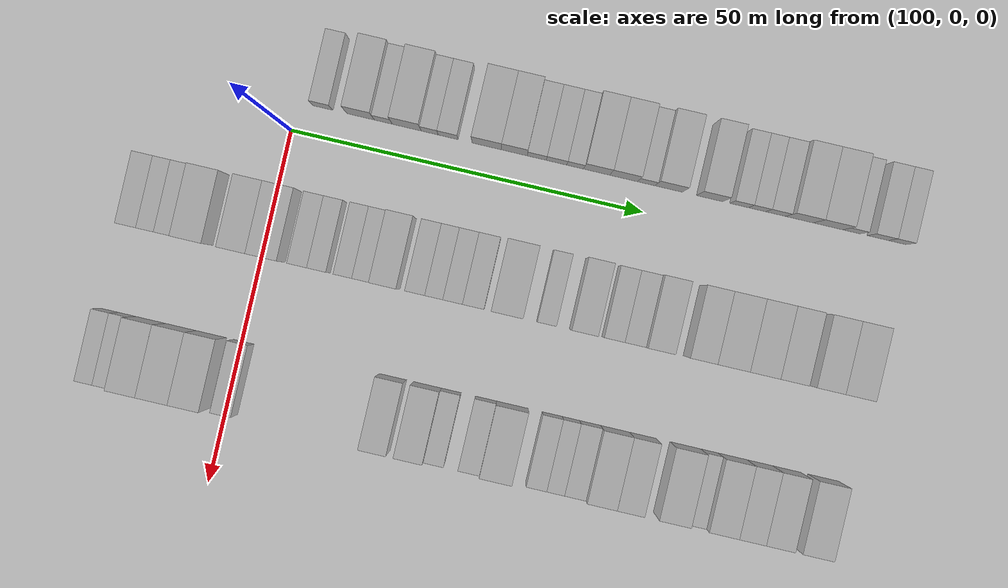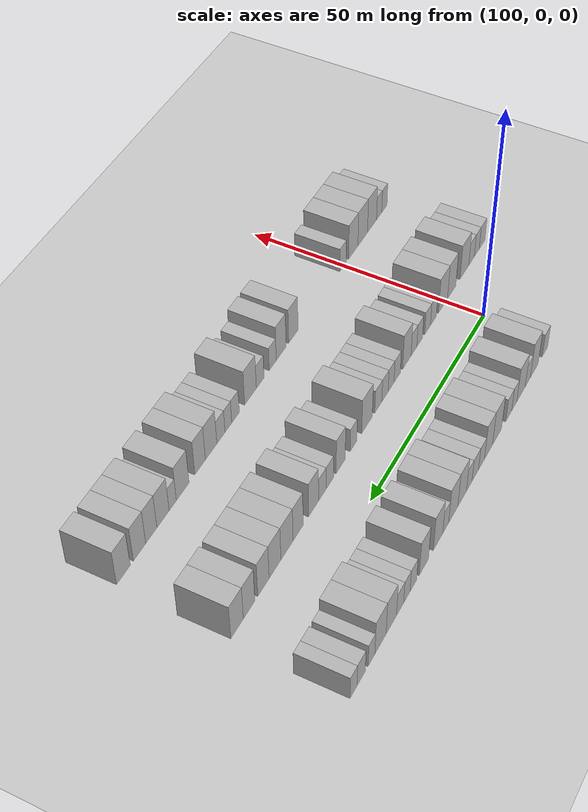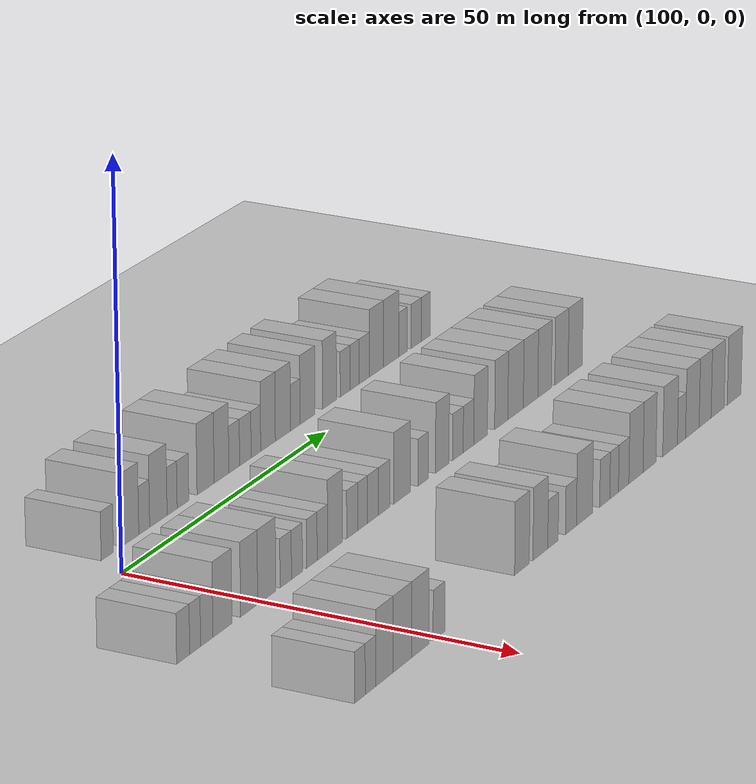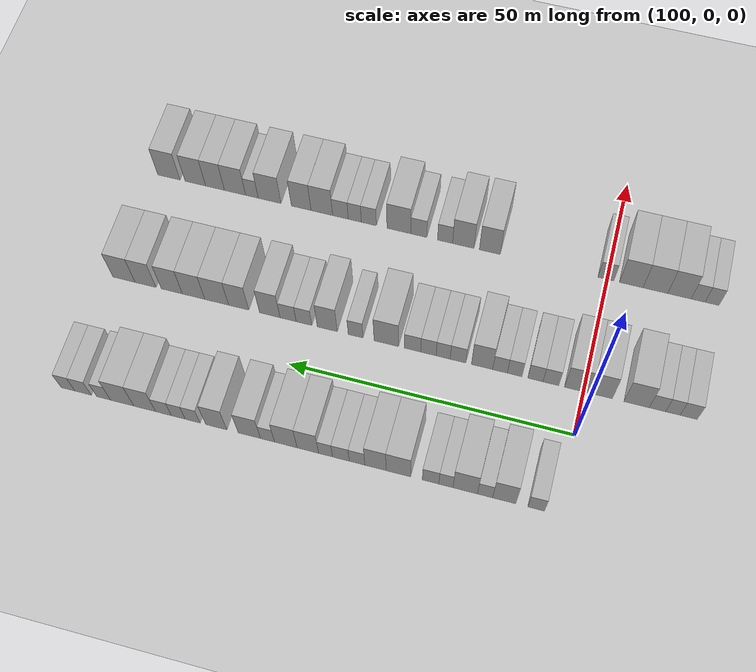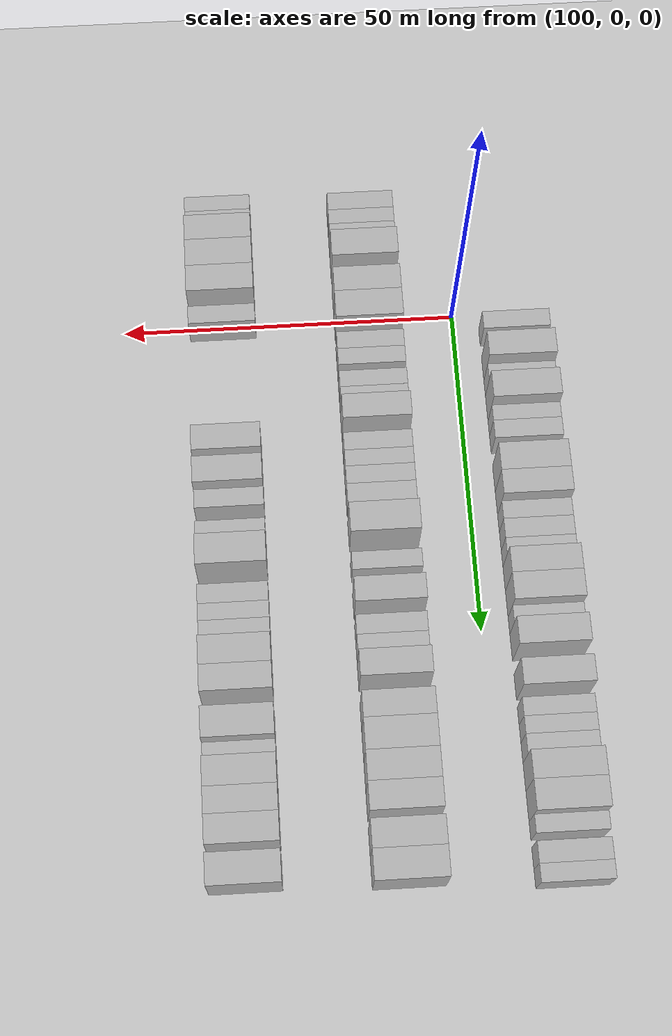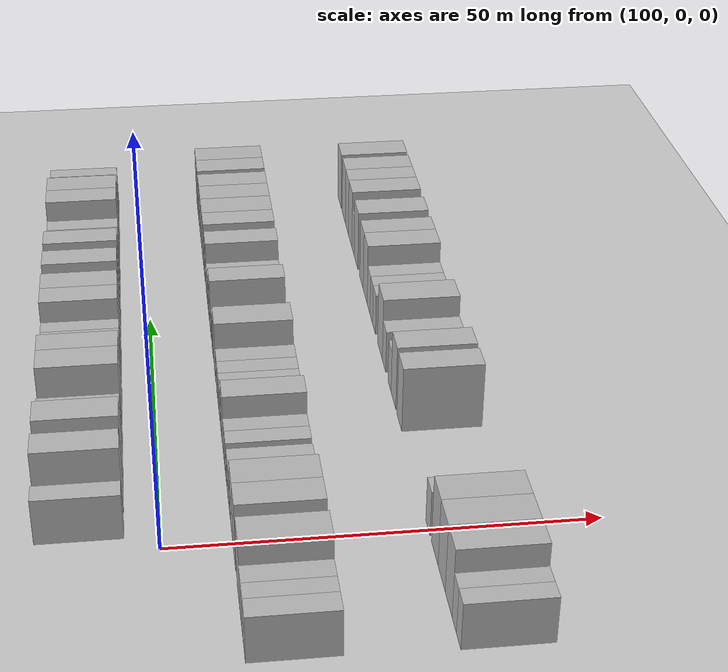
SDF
<sdf version="1.6">
 <world name="default">
  <include>
   <name>ground_plane_2</name>
   <uri>model://HANNAS_ground_plane</uri>
   <pose>100 0 0  0 0 0</pose>
  </include>
  <model name="building_623">
   <static>1</static>
   <pose>91.0000 3.6426 0 0.000000 0.000000 0.000000</pose>
   <link name="link">
    <pose>0 0 3.00 0 0 0</pose>
    <collision name="collision"><geometry><box><size>10.0000 2.7874 6.0000</size></box></geometry></collision>
    <visual name="visual">
     <cast_shadows>0</cast_shadows>
     <geometry><box><size>10.0000 2.7874 6.0000</size></box></geometry>
     <material>
      <script>
       <uri>model://HANNAS_wall/materials/scripts</uri>
       <uri>model://HANNAS_wall/materials/textures</uri>
       <name>vrc/HANNAS_wall</name>
      </script>
     </material>
    </visual>
   </link>
  </model>
  <model name="building_624">
   <static>1</static>
   <pose>91.0000 8.9837 0 0.000000 0.000000 0.000000</pose>
   <link name="link">
    <pose>0 0 4.50 0 0 0</pose>
    <collision name="collision"><geometry><box><size>10.0000 3.8947 9.0000</size></box></geometry></collision>
    <visual name="visual">
     <cast_shadows>0</cast_shadows>
     <geometry><box><size>10.0000 3.8947 9.0000</size></box></geometry>
     <material>
      <script>
       <uri>model://HANNAS_wall/materials/scripts</uri>
       <uri>model://HANNAS_wall/materials/textures</uri>
       <name>vrc/HANNAS_wall</name>
      </script>
     </material>
    </visual>
   </link>
  </model>
  <model name="building_625">
   <static>1</static>
   <pose>91.0000 12.2042 0 0.000000 0.000000 0.000000</pose>
   <link name="link">
    <pose>0 0 3.00 0 0 0</pose>
    <collision name="collision"><geometry><box><size>10.0000 2.5463 6.0000</size></box></geometry></collision>
    <visual name="visual">
     <cast_shadows>0</cast_shadows>
     <geometry><box><size>10.0000 2.5463 6.0000</size></box></geometry>
     <material>
      <script>
       <uri>model://HANNAS_wall/materials/scripts</uri>
       <uri>model://HANNAS_wall/materials/textures</uri>
       <name>vrc/HANNAS_wall</name>
      </script>
     </material>
    </visual>
   </link>
  </model>
  <model name="building_626">
   <static>1</static>
   <pose>91.0000 15.5388 0 0.000000 0.000000 0.000000</pose>
   <link name="link">
    <pose>0 0 4.50 0 0 0</pose>
    <collision name="collision"><geometry><box><size>10.0000 4.1229 9.0000</size></box></geometry></collision>
    <visual name="visual">
     <cast_shadows>0</cast_shadows>
     <geometry><box><size>10.0000 4.1229 9.0000</size></box></geometry>
     <material>
      <script>
       <uri>model://HANNAS_wall/materials/scripts</uri>
       <uri>model://HANNAS_wall/materials/textures</uri>
       <name>vrc/HANNAS_wall</name>
      </script>
     </material>
    </visual>
   </link>
  </model>
  <model name="building_627">
   <static>1</static>
   <pose>91.0000 18.8030 0 0.000000 0.000000 0.000000</pose>
   <link name="link">
    <pose>0 0 3.00 0 0 0</pose>
    <collision name="collision"><geometry><box><size>10.0000 2.4054 6.0000</size></box></geometry></collision>
    <visual name="visual">
     <cast_shadows>0</cast_shadows>
     <geometry><box><size>10.0000 2.4054 6.0000</size></box></geometry>
     <material>
      <script>
       <uri>model://HANNAS_wall/materials/scripts</uri>
       <uri>model://HANNAS_wall/materials/textures</uri>
       <name>vrc/HANNAS_wall</name>
      </script>
     </material>
    </visual>
   </link>
  </model>
  <model name="building_628">
   <static>1</static>
   <pose>91.0000 21.4073 0 0.000000 0.000000 0.000000</pose>
   <link name="link">
    <pose>0 0 3.00 0 0 0</pose>
    <collision name="collision"><geometry><box><size>10.0000 2.8033 6.0000</size></box></geometry></collision>
    <visual name="visual">
     <cast_shadows>0</cast_shadows>
     <geometry><box><size>10.0000 2.8033 6.0000</size></box></geometry>
     <material>
      <script>
       <uri>model://HANNAS_wall/materials/scripts</uri>
       <uri>model://HANNAS_wall/materials/textures</uri>
       <name>vrc/HANNAS_wall</name>
      </script>
     </material>
    </visual>
   </link>
  </model>
  <model name="building_629">
   <static>1</static>
   <pose>91.0000 26.9005 0 0.000000 0.000000 0.000000</pose>
   <link name="link">
    <pose>0 0 4.50 0 0 0</pose>
    <collision name="collision"><geometry><box><size>10.0000 4.1831 9.0000</size></box></geometry></collision>
    <visual name="visual">
     <cast_shadows>0</cast_shadows>
     <geometry><box><size>10.0000 4.1831 9.0000</size></box></geometry>
     <material>
      <script>
       <uri>model://HANNAS_wall/materials/scripts</uri>
       <uri>model://HANNAS_wall/materials/textures</uri>
       <name>vrc/HANNAS_wall</name>
      </script>
     </material>
    </visual>
   </link>
  </model>
  <model name="building_630">
   <static>1</static>
   <pose>91.0000 30.8137 0 0.000000 0.000000 0.000000</pose>
   <link name="link">
    <pose>0 0 4.50 0 0 0</pose>
    <collision name="collision"><geometry><box><size>10.0000 3.6433 9.0000</size></box></geometry></collision>
    <visual name="visual">
     <cast_shadows>0</cast_shadows>
     <geometry><box><size>10.0000 3.6433 9.0000</size></box></geometry>
     <material>
      <script>
       <uri>model://HANNAS_wall/materials/scripts</uri>
       <uri>model://HANNAS_wall/materials/textures</uri>
       <name>vrc/HANNAS_wall</name>
      </script>
     </material>
    </visual>
   </link>
  </model>
  <model name="building_631">
   <static>1</static>
   <pose>91.0000 33.9777 0 0.000000 0.000000 0.000000</pose>
   <link name="link">
    <pose>0 0 3.00 0 0 0</pose>
    <collision name="collision"><geometry><box><size>10.0000 2.6846 6.0000</size></box></geometry></collision>
    <visual name="visual">
     <cast_shadows>0</cast_shadows>
     <geometry><box><size>10.0000 2.6846 6.0000</size></box></geometry>
     <material>
      <script>
       <uri>model://HANNAS_wall/materials/scripts</uri>
       <uri>model://HANNAS_wall/materials/textures</uri>
       <name>vrc/HANNAS_wall</name>
      </script>
     </material>
    </visual>
   </link>
  </model>
  <model name="building_632">
   <static>1</static>
   <pose>91.0000 36.7694 0 0.000000 0.000000 0.000000</pose>
   <link name="link">
    <pose>0 0 3.00 0 0 0</pose>
    <collision name="collision"><geometry><box><size>10.0000 2.8990 6.0000</size></box></geometry></collision>
    <visual name="visual">
     <cast_shadows>0</cast_shadows>
     <geometry><box><size>10.0000 2.8990 6.0000</size></box></geometry>
     <material>
      <script>
       <uri>model://HANNAS_wall/materials/scripts</uri>
       <uri>model://HANNAS_wall/materials/textures</uri>
       <name>vrc/HANNAS_wall</name>
      </script>
     </material>
    </visual>
   </link>
  </model>
  <model name="building_633">
   <static>1</static>
   <pose>91.0000 39.4252 0 0.000000 0.000000 0.000000</pose>
   <link name="link">
    <pose>0 0 3.00 0 0 0</pose>
    <collision name="collision"><geometry><box><size>10.0000 2.4126 6.0000</size></box></geometry></collision>
    <visual name="visual">
     <cast_shadows>0</cast_shadows>
     <geometry><box><size>10.0000 2.4126 6.0000</size></box></geometry>
     <material>
      <script>
       <uri>model://HANNAS_wall/materials/scripts</uri>
       <uri>model://HANNAS_wall/materials/textures</uri>
       <name>vrc/HANNAS_wall</name>
      </script>
     </material>
    </visual>
   </link>
  </model>
  <model name="building_634">
   <static>1</static>
   <pose>91.0000 42.4976 0 0.000000 0.000000 0.000000</pose>
   <link name="link">
    <pose>0 0 4.50 0 0 0</pose>
    <collision name="collision"><geometry><box><size>10.0000 3.7321 9.0000</size></box></geometry></collision>
    <visual name="visual">
     <cast_shadows>0</cast_shadows>
     <geometry><box><size>10.0000 3.7321 9.0000</size></box></geometry>
     <material>
      <script>
       <uri>model://HANNAS_wall/materials/scripts</uri>
       <uri>model://HANNAS_wall/materials/textures</uri>
       <name>vrc/HANNAS_wall</name>
      </script>
     </material>
    </visual>
   </link>
  </model>
  <model name="building_635">
   <static>1</static>
   <pose>91.0000 46.3310 0 0.000000 0.000000 0.000000</pose>
   <link name="link">
    <pose>0 0 4.50 0 0 0</pose>
    <collision name="collision"><geometry><box><size>10.0000 3.9347 9.0000</size></box></geometry></collision>
    <visual name="visual">
     <cast_shadows>0</cast_shadows>
     <geometry><box><size>10.0000 3.9347 9.0000</size></box></geometry>
     <material>
      <script>
       <uri>model://HANNAS_wall/materials/scripts</uri>
       <uri>model://HANNAS_wall/materials/textures</uri>
       <name>vrc/HANNAS_wall</name>
      </script>
     </material>
    </visual>
   </link>
  </model>
  <model name="building_636">
   <static>1</static>
   <pose>91.0000 49.5334 0 0.000000 0.000000 0.000000</pose>
   <link name="link">
    <pose>0 0 3.00 0 0 0</pose>
    <collision name="collision"><geometry><box><size>10.0000 2.4701 6.0000</size></box></geometry></collision>
    <visual name="visual">
     <cast_shadows>0</cast_shadows>
     <geometry><box><size>10.0000 2.4701 6.0000</size></box></geometry>
     <material>
      <script>
       <uri>model://HANNAS_wall/materials/scripts</uri>
       <uri>model://HANNAS_wall/materials/textures</uri>
       <name>vrc/HANNAS_wall</name>
      </script>
     </material>
    </visual>
   </link>
  </model>
  <model name="building_637">
   <static>1</static>
   <pose>91.0000 52.7285 0 0.000000 0.000000 0.000000</pose>
   <link name="link">
    <pose>0 0 4.50 0 0 0</pose>
    <collision name="collision"><geometry><box><size>10.0000 3.9201 9.0000</size></box></geometry></collision>
    <visual name="visual">
     <cast_shadows>0</cast_shadows>
     <geometry><box><size>10.0000 3.9201 9.0000</size></box></geometry>
     <material>
      <script>
       <uri>model://HANNAS_wall/materials/scripts</uri>
       <uri>model://HANNAS_wall/materials/textures</uri>
       <name>vrc/HANNAS_wall</name>
      </script>
     </material>
    </visual>
   </link>
  </model>
  <model name="building_638">
   <static>1</static>
   <pose>91.0000 58.5573 0 0.000000 0.000000 0.000000</pose>
   <link name="link">
    <pose>0 0 4.50 0 0 0</pose>
    <collision name="collision"><geometry><box><size>10.0000 3.7375 9.0000</size></box></geometry></collision>
    <visual name="visual">
     <cast_shadows>0</cast_shadows>
     <geometry><box><size>10.0000 3.7375 9.0000</size></box></geometry>
     <material>
      <script>
       <uri>model://HANNAS_wall/materials/scripts</uri>
       <uri>model://HANNAS_wall/materials/textures</uri>
       <name>vrc/HANNAS_wall</name>
      </script>
     </material>
    </visual>
   </link>
  </model>
  <model name="building_639">
   <static>1</static>
   <pose>91.0000 62.7350 0 0.000000 0.000000 0.000000</pose>
   <link name="link">
    <pose>0 0 3.00 0 0 0</pose>
    <collision name="collision"><geometry><box><size>10.0000 2.6179 6.0000</size></box></geometry></collision>
    <visual name="visual">
     <cast_shadows>0</cast_shadows>
     <geometry><box><size>10.0000 2.6179 6.0000</size></box></geometry>
     <material>
      <script>
       <uri>model://HANNAS_wall/materials/scripts</uri>
       <uri>model://HANNAS_wall/materials/textures</uri>
       <name>vrc/HANNAS_wall</name>
      </script>
     </material>
    </visual>
   </link>
  </model>
  <model name="building_640">
   <static>1</static>
   <pose>91.0000 65.2831 0 0.000000 0.000000 0.000000</pose>
   <link name="link">
    <pose>0 0 3.00 0 0 0</pose>
    <collision name="collision"><geometry><box><size>10.0000 2.4783 6.0000</size></box></geometry></collision>
    <visual name="visual">
     <cast_shadows>0</cast_shadows>
     <geometry><box><size>10.0000 2.4783 6.0000</size></box></geometry>
     <material>
      <script>
       <uri>model://HANNAS_wall/materials/scripts</uri>
       <uri>model://HANNAS_wall/materials/textures</uri>
       <name>vrc/HANNAS_wall</name>
      </script>
     </material>
    </visual>
   </link>
  </model>
  <model name="building_641">
   <static>1</static>
   <pose>91.0000 67.9328 0 0.000000 0.000000 0.000000</pose>
   <link name="link">
    <pose>0 0 3.00 0 0 0</pose>
    <collision name="collision"><geometry><box><size>10.0000 2.8212 6.0000</size></box></geometry></collision>
    <visual name="visual">
     <cast_shadows>0</cast_shadows>
     <geometry><box><size>10.0000 2.8212 6.0000</size></box></geometry>
     <material>
      <script>
       <uri>model://HANNAS_wall/materials/scripts</uri>
       <uri>model://HANNAS_wall/materials/textures</uri>
       <name>vrc/HANNAS_wall</name>
      </script>
     </material>
    </visual>
   </link>
  </model>
  <model name="building_642">
   <static>1</static>
   <pose>91.0000 71.3110 0 0.000000 0.000000 0.000000</pose>
   <link name="link">
    <pose>0 0 4.50 0 0 0</pose>
    <collision name="collision"><geometry><box><size>10.0000 3.9352 9.0000</size></box></geometry></collision>
    <visual name="visual">
     <cast_shadows>0</cast_shadows>
     <geometry><box><size>10.0000 3.9352 9.0000</size></box></geometry>
     <material>
      <script>
       <uri>model://HANNAS_wall/materials/scripts</uri>
       <uri>model://HANNAS_wall/materials/textures</uri>
       <name>vrc/HANNAS_wall</name>
      </script>
     </material>
    </visual>
   </link>
  </model>
  <model name="building_643">
   <static>1</static>
   <pose>91.0000 75.3728 0 0.000000 0.000000 0.000000</pose>
   <link name="link">
    <pose>0 0 4.50 0 0 0</pose>
    <collision name="collision"><geometry><box><size>10.0000 4.1884 9.0000</size></box></geometry></collision>
    <visual name="visual">
     <cast_shadows>0</cast_shadows>
     <geometry><box><size>10.0000 4.1884 9.0000</size></box></geometry>
     <material>
      <script>
       <uri>model://HANNAS_wall/materials/scripts</uri>
       <uri>model://HANNAS_wall/materials/textures</uri>
       <name>vrc/HANNAS_wall</name>
      </script>
     </material>
    </visual>
   </link>
  </model>
  <model name="building_644">
   <static>1</static>
   <pose>91.0000 78.7171 0 0.000000 0.000000 0.000000</pose>
   <link name="link">
    <pose>0 0 3.00 0 0 0</pose>
    <collision name="collision"><geometry><box><size>10.0000 2.5002 6.0000</size></box></geometry></collision>
    <visual name="visual">
     <cast_shadows>0</cast_shadows>
     <geometry><box><size>10.0000 2.5002 6.0000</size></box></geometry>
     <material>
      <script>
       <uri>model://HANNAS_wall/materials/scripts</uri>
       <uri>model://HANNAS_wall/materials/textures</uri>
       <name>vrc/HANNAS_wall</name>
      </script>
     </material>
    </visual>
   </link>
  </model>
  <model name="building_645">
   <static>1</static>
   <pose>91.0000 82.4505 0 0.000000 0.000000 0.000000</pose>
   <link name="link">
    <pose>0 0 3.00 0 0 0</pose>
    <collision name="collision"><geometry><box><size>10.0000 2.9667 6.0000</size></box></geometry></collision>
    <visual name="visual">
     <cast_shadows>0</cast_shadows>
     <geometry><box><size>10.0000 2.9667 6.0000</size></box></geometry>
     <material>
      <script>
       <uri>model://HANNAS_wall/materials/scripts</uri>
       <uri>model://HANNAS_wall/materials/textures</uri>
       <name>vrc/HANNAS_wall</name>
      </script>
     </material>
    </visual>
   </link>
  </model>
  <model name="building_646">
   <static>1</static>
   <pose>91.0000 85.1987 0 0.000000 0.000000 0.000000</pose>
   <link name="link">
    <pose>0 0 3.00 0 0 0</pose>
    <collision name="collision"><geometry><box><size>10.0000 2.5296 6.0000</size></box></geometry></collision>
    <visual name="visual">
     <cast_shadows>0</cast_shadows>
     <geometry><box><size>10.0000 2.5296 6.0000</size></box></geometry>
     <material>
      <script>
       <uri>model://HANNAS_wall/materials/scripts</uri>
       <uri>model://HANNAS_wall/materials/textures</uri>
       <name>vrc/HANNAS_wall</name>
      </script>
     </material>
    </visual>
   </link>
  </model>
  <model name="building_815">
   <static>1</static>
   <pose>113.0000 -17.9748 0 0.000000 0.000000 0.000000</pose>
   <link name="link">
    <pose>0 0 3.00 0 0 0</pose>
    <collision name="collision"><geometry><box><size>10.0000 2.9283 6.0000</size></box></geometry></collision>
    <visual name="visual">
     <cast_shadows>0</cast_shadows>
     <geometry><box><size>10.0000 2.9283 6.0000</size></box></geometry>
     <material>
      <script>
       <uri>model://HANNAS_wall/materials/scripts</uri>
       <uri>model://HANNAS_wall/materials/textures</uri>
       <name>vrc/HANNAS_wall</name>
      </script>
     </material>
    </visual>
   </link>
  </model>
  <model name="building_816">
   <static>1</static>
   <pose>113.0000 -15.2844 0 0.000000 0.000000 0.000000</pose>
   <link name="link">
    <pose>0 0 3.00 0 0 0</pose>
    <collision name="collision"><geometry><box><size>10.0000 2.4525 6.0000</size></box></geometry></collision>
    <visual name="visual">
     <cast_shadows>0</cast_shadows>
     <geometry><box><size>10.0000 2.4525 6.0000</size></box></geometry>
     <material>
      <script>
       <uri>model://HANNAS_wall/materials/scripts</uri>
       <uri>model://HANNAS_wall/materials/textures</uri>
       <name>vrc/HANNAS_wall</name>
      </script>
     </material>
    </visual>
   </link>
  </model>
  <model name="building_817">
   <static>1</static>
   <pose>113.0000 -12.6626 0 0.000000 0.000000 0.000000</pose>
   <link name="link">
    <pose>0 0 3.00 0 0 0</pose>
    <collision name="collision"><geometry><box><size>10.0000 2.7912 6.0000</size></box></geometry></collision>
    <visual name="visual">
     <cast_shadows>0</cast_shadows>
     <geometry><box><size>10.0000 2.7912 6.0000</size></box></geometry>
     <material>
      <script>
       <uri>model://HANNAS_wall/materials/scripts</uri>
       <uri>model://HANNAS_wall/materials/textures</uri>
       <name>vrc/HANNAS_wall</name>
      </script>
     </material>
    </visual>
   </link>
  </model>
  <model name="building_818">
   <static>1</static>
   <pose>113.0000 -9.0869 0 0.000000 0.000000 0.000000</pose>
   <link name="link">
    <pose>0 0 4.50 0 0 0</pose>
    <collision name="collision"><geometry><box><size>10.0000 4.3601 9.0000</size></box></geometry></collision>
    <visual name="visual">
     <cast_shadows>0</cast_shadows>
     <geometry><box><size>10.0000 4.3601 9.0000</size></box></geometry>
     <material>
      <script>
       <uri>model://HANNAS_wall/materials/scripts</uri>
       <uri>model://HANNAS_wall/materials/textures</uri>
       <name>vrc/HANNAS_wall</name>
      </script>
     </material>
    </visual>
   </link>
  </model>
  <model name="building_819">
   <static>1</static>
   <pose>113.0000 -2.9078 0 0.000000 0.000000 0.000000</pose>
   <link name="link">
    <pose>0 0 4.50 0 0 0</pose>
    <collision name="collision"><geometry><box><size>10.0000 3.9981 9.0000</size></box></geometry></collision>
    <visual name="visual">
     <cast_shadows>0</cast_shadows>
     <geometry><box><size>10.0000 3.9981 9.0000</size></box></geometry>
     <material>
      <script>
       <uri>model://HANNAS_wall/materials/scripts</uri>
       <uri>model://HANNAS_wall/materials/textures</uri>
       <name>vrc/HANNAS_wall</name>
      </script>
     </material>
    </visual>
   </link>
  </model>
  <model name="building_820">
   <static>1</static>
   <pose>113.0000 1.2424 0 0.000000 0.000000 0.000000</pose>
   <link name="link">
    <pose>0 0 4.50 0 0 0</pose>
    <collision name="collision"><geometry><box><size>10.0000 4.3024 9.0000</size></box></geometry></collision>
    <visual name="visual">
     <cast_shadows>0</cast_shadows>
     <geometry><box><size>10.0000 4.3024 9.0000</size></box></geometry>
     <material>
      <script>
       <uri>model://HANNAS_wall/materials/scripts</uri>
       <uri>model://HANNAS_wall/materials/textures</uri>
       <name>vrc/HANNAS_wall</name>
      </script>
     </material>
    </visual>
   </link>
  </model>
  <model name="building_821">
   <static>1</static>
   <pose>113.0000 5.7720 0 0.000000 0.000000 0.000000</pose>
   <link name="link">
    <pose>0 0 3.00 0 0 0</pose>
    <collision name="collision"><geometry><box><size>10.0000 2.7567 6.0000</size></box></geometry></collision>
    <visual name="visual">
     <cast_shadows>0</cast_shadows>
     <geometry><box><size>10.0000 2.7567 6.0000</size></box></geometry>
     <material>
      <script>
       <uri>model://HANNAS_wall/materials/scripts</uri>
       <uri>model://HANNAS_wall/materials/textures</uri>
       <name>vrc/HANNAS_wall</name>
      </script>
     </material>
    </visual>
   </link>
  </model>
  <model name="building_822">
   <static>1</static>
   <pose>113.0000 8.4758 0 0.000000 0.000000 0.000000</pose>
   <link name="link">
    <pose>0 0 3.00 0 0 0</pose>
    <collision name="collision"><geometry><box><size>10.0000 2.6510 6.0000</size></box></geometry></collision>
    <visual name="visual">
     <cast_shadows>0</cast_shadows>
     <geometry><box><size>10.0000 2.6510 6.0000</size></box></geometry>
     <material>
      <script>
       <uri>model://HANNAS_wall/materials/scripts</uri>
       <uri>model://HANNAS_wall/materials/textures</uri>
       <name>vrc/HANNAS_wall</name>
      </script>
     </material>
    </visual>
   </link>
  </model>
  <model name="building_823">
   <static>1</static>
   <pose>113.0000 12.0948 0 0.000000 0.000000 0.000000</pose>
   <link name="link">
    <pose>0 0 3.00 0 0 0</pose>
    <collision name="collision"><geometry><box><size>10.0000 2.5871 6.0000</size></box></geometry></collision>
    <visual name="visual">
     <cast_shadows>0</cast_shadows>
     <geometry><box><size>10.0000 2.5871 6.0000</size></box></geometry>
     <material>
      <script>
       <uri>model://HANNAS_wall/materials/scripts</uri>
       <uri>model://HANNAS_wall/materials/textures</uri>
       <name>vrc/HANNAS_wall</name>
      </script>
     </material>
    </visual>
   </link>
  </model>
  <model name="building_824">
   <static>1</static>
   <pose>113.0000 14.6756 0 0.000000 0.000000 0.000000</pose>
   <link name="link">
    <pose>0 0 3.00 0 0 0</pose>
    <collision name="collision"><geometry><box><size>10.0000 2.5744 6.0000</size></box></geometry></collision>
    <visual name="visual">
     <cast_shadows>0</cast_shadows>
     <geometry><box><size>10.0000 2.5744 6.0000</size></box></geometry>
     <material>
      <script>
       <uri>model://HANNAS_wall/materials/scripts</uri>
       <uri>model://HANNAS_wall/materials/textures</uri>
       <name>vrc/HANNAS_wall</name>
      </script>
     </material>
    </visual>
   </link>
  </model>
  <model name="building_825">
   <static>1</static>
   <pose>113.0000 17.8357 0 0.000000 0.000000 0.000000</pose>
   <link name="link">
    <pose>0 0 4.50 0 0 0</pose>
    <collision name="collision"><geometry><box><size>10.0000 3.7458 9.0000</size></box></geometry></collision>
    <visual name="visual">
     <cast_shadows>0</cast_shadows>
     <geometry><box><size>10.0000 3.7458 9.0000</size></box></geometry>
     <material>
      <script>
       <uri>model://HANNAS_wall/materials/scripts</uri>
       <uri>model://HANNAS_wall/materials/textures</uri>
       <name>vrc/HANNAS_wall</name>
      </script>
     </material>
    </visual>
   </link>
  </model>
  <model name="building_826">
   <static>1</static>
   <pose>113.0000 22.0992 0 0.000000 0.000000 0.000000</pose>
   <link name="link">
    <pose>0 0 3.00 0 0 0</pose>
    <collision name="collision"><geometry><box><size>10.0000 2.7811 6.0000</size></box></geometry></collision>
    <visual name="visual">
     <cast_shadows>0</cast_shadows>
     <geometry><box><size>10.0000 2.7811 6.0000</size></box></geometry>
     <material>
      <script>
       <uri>model://HANNAS_wall/materials/scripts</uri>
       <uri>model://HANNAS_wall/materials/textures</uri>
       <name>vrc/HANNAS_wall</name>
      </script>
     </material>
    </visual>
   </link>
  </model>
  <model name="building_827">
   <static>1</static>
   <pose>113.0000 24.7420 0 0.000000 0.000000 0.000000</pose>
   <link name="link">
    <pose>0 0 3.00 0 0 0</pose>
    <collision name="collision"><geometry><box><size>10.0000 2.5045 6.0000</size></box></geometry></collision>
    <visual name="visual">
     <cast_shadows>0</cast_shadows>
     <geometry><box><size>10.0000 2.5045 6.0000</size></box></geometry>
     <material>
      <script>
       <uri>model://HANNAS_wall/materials/scripts</uri>
       <uri>model://HANNAS_wall/materials/textures</uri>
       <name>vrc/HANNAS_wall</name>
      </script>
     </material>
    </visual>
   </link>
  </model>
  <model name="building_828">
   <static>1</static>
   <pose>113.0000 27.3547 0 0.000000 0.000000 0.000000</pose>
   <link name="link">
    <pose>0 0 3.00 0 0 0</pose>
    <collision name="collision"><geometry><box><size>10.0000 2.7208 6.0000</size></box></geometry></collision>
    <visual name="visual">
     <cast_shadows>0</cast_shadows>
     <geometry><box><size>10.0000 2.7208 6.0000</size></box></geometry>
     <material>
      <script>
       <uri>model://HANNAS_wall/materials/scripts</uri>
       <uri>model://HANNAS_wall/materials/textures</uri>
       <name>vrc/HANNAS_wall</name>
      </script>
     </material>
    </visual>
   </link>
  </model>
  <model name="building_829">
   <static>1</static>
   <pose>113.0000 30.2130 0 0.000000 0.000000 0.000000</pose>
   <link name="link">
    <pose>0 0 3.00 0 0 0</pose>
    <collision name="collision"><geometry><box><size>10.0000 2.9959 6.0000</size></box></geometry></collision>
    <visual name="visual">
     <cast_shadows>0</cast_shadows>
     <geometry><box><size>10.0000 2.9959 6.0000</size></box></geometry>
     <material>
      <script>
       <uri>model://HANNAS_wall/materials/scripts</uri>
       <uri>model://HANNAS_wall/materials/textures</uri>
       <name>vrc/HANNAS_wall</name>
      </script>
     </material>
    </visual>
   </link>
  </model>
  <model name="building_830">
   <static>1</static>
   <pose>113.0000 34.9081 0 0.000000 0.000000 0.000000</pose>
   <link name="link">
    <pose>0 0 4.50 0 0 0</pose>
    <collision name="collision"><geometry><box><size>10.0000 4.3945 9.0000</size></box></geometry></collision>
    <visual name="visual">
     <cast_shadows>0</cast_shadows>
     <geometry><box><size>10.0000 4.3945 9.0000</size></box></geometry>
     <material>
      <script>
       <uri>model://HANNAS_wall/materials/scripts</uri>
       <uri>model://HANNAS_wall/materials/textures</uri>
       <name>vrc/HANNAS_wall</name>
      </script>
     </material>
    </visual>
   </link>
  </model>
  <model name="building_831">
   <static>1</static>
   <pose>113.0000 40.4354 0 0.000000 0.000000 0.000000</pose>
   <link name="link">
    <pose>0 0 3.00 0 0 0</pose>
    <collision name="collision"><geometry><box><size>10.0000 2.6601 6.0000</size></box></geometry></collision>
    <visual name="visual">
     <cast_shadows>0</cast_shadows>
     <geometry><box><size>10.0000 2.6601 6.0000</size></box></geometry>
     <material>
      <script>
       <uri>model://HANNAS_wall/materials/scripts</uri>
       <uri>model://HANNAS_wall/materials/textures</uri>
       <name>vrc/HANNAS_wall</name>
      </script>
     </material>
    </visual>
   </link>
  </model>
  <model name="building_832">
   <static>1</static>
   <pose>113.0000 45.5760 0 0.000000 0.000000 0.000000</pose>
   <link name="link">
    <pose>0 0 4.50 0 0 0</pose>
    <collision name="collision"><geometry><box><size>10.0000 3.6211 9.0000</size></box></geometry></collision>
    <visual name="visual">
     <cast_shadows>0</cast_shadows>
     <geometry><box><size>10.0000 3.6211 9.0000</size></box></geometry>
     <material>
      <script>
       <uri>model://HANNAS_wall/materials/scripts</uri>
       <uri>model://HANNAS_wall/materials/textures</uri>
       <name>vrc/HANNAS_wall</name>
      </script>
     </material>
    </visual>
   </link>
  </model>
  <model name="building_833">
   <static>1</static>
   <pose>113.0000 49.8146 0 0.000000 0.000000 0.000000</pose>
   <link name="link">
    <pose>0 0 3.00 0 0 0</pose>
    <collision name="collision"><geometry><box><size>10.0000 2.8562 6.0000</size></box></geometry></collision>
    <visual name="visual">
     <cast_shadows>0</cast_shadows>
     <geometry><box><size>10.0000 2.8562 6.0000</size></box></geometry>
     <material>
      <script>
       <uri>model://HANNAS_wall/materials/scripts</uri>
       <uri>model://HANNAS_wall/materials/textures</uri>
       <name>vrc/HANNAS_wall</name>
      </script>
     </material>
    </visual>
   </link>
  </model>
  <model name="building_834">
   <static>1</static>
   <pose>113.0000 52.7177 0 0.000000 0.000000 0.000000</pose>
   <link name="link">
    <pose>0 0 3.00 0 0 0</pose>
    <collision name="collision"><geometry><box><size>10.0000 2.9500 6.0000</size></box></geometry></collision>
    <visual name="visual">
     <cast_shadows>0</cast_shadows>
     <geometry><box><size>10.0000 2.9500 6.0000</size></box></geometry>
     <material>
      <script>
       <uri>model://HANNAS_wall/materials/scripts</uri>
       <uri>model://HANNAS_wall/materials/textures</uri>
       <name>vrc/HANNAS_wall</name>
      </script>
     </material>
    </visual>
   </link>
  </model>
  <model name="building_835">
   <static>1</static>
   <pose>113.0000 56.0761 0 0.000000 0.000000 0.000000</pose>
   <link name="link">
    <pose>0 0 4.50 0 0 0</pose>
    <collision name="collision"><geometry><box><size>10.0000 3.7666 9.0000</size></box></geometry></collision>
    <visual name="visual">
     <cast_shadows>0</cast_shadows>
     <geometry><box><size>10.0000 3.7666 9.0000</size></box></geometry>
     <material>
      <script>
       <uri>model://HANNAS_wall/materials/scripts</uri>
       <uri>model://HANNAS_wall/materials/textures</uri>
       <name>vrc/HANNAS_wall</name>
      </script>
     </material>
    </visual>
   </link>
  </model>
  <model name="building_836">
   <static>1</static>
   <pose>113.0000 61.8256 0 0.000000 0.000000 0.000000</pose>
   <link name="link">
    <pose>0 0 4.50 0 0 0</pose>
    <collision name="collision"><geometry><box><size>10.0000 3.7324 9.0000</size></box></geometry></collision>
    <visual name="visual">
     <cast_shadows>0</cast_shadows>
     <geometry><box><size>10.0000 3.7324 9.0000</size></box></geometry>
     <material>
      <script>
       <uri>model://HANNAS_wall/materials/scripts</uri>
       <uri>model://HANNAS_wall/materials/textures</uri>
       <name>vrc/HANNAS_wall</name>
      </script>
     </material>
    </visual>
   </link>
  </model>
  <model name="building_837">
   <static>1</static>
   <pose>113.0000 65.9042 0 0.000000 0.000000 0.000000</pose>
   <link name="link">
    <pose>0 0 4.50 0 0 0</pose>
    <collision name="collision"><geometry><box><size>10.0000 4.4249 9.0000</size></box></geometry></collision>
    <visual name="visual">
     <cast_shadows>0</cast_shadows>
     <geometry><box><size>10.0000 4.4249 9.0000</size></box></geometry>
     <material>
      <script>
       <uri>model://HANNAS_wall/materials/scripts</uri>
       <uri>model://HANNAS_wall/materials/textures</uri>
       <name>vrc/HANNAS_wall</name>
      </script>
     </material>
    </visual>
   </link>
  </model>
  <model name="building_838">
   <static>1</static>
   <pose>113.0000 70.2023 0 0.000000 0.000000 0.000000</pose>
   <link name="link">
    <pose>0 0 4.50 0 0 0</pose>
    <collision name="collision"><geometry><box><size>10.0000 4.1713 9.0000</size></box></geometry></collision>
    <visual name="visual">
     <cast_shadows>0</cast_shadows>
     <geometry><box><size>10.0000 4.1713 9.0000</size></box></geometry>
     <material>
      <script>
       <uri>model://HANNAS_wall/materials/scripts</uri>
       <uri>model://HANNAS_wall/materials/textures</uri>
       <name>vrc/HANNAS_wall</name>
      </script>
     </material>
    </visual>
   </link>
  </model>
  <model name="building_839">
   <static>1</static>
   <pose>113.0000 74.2618 0 0.000000 0.000000 0.000000</pose>
   <link name="link">
    <pose>0 0 4.50 0 0 0</pose>
    <collision name="collision"><geometry><box><size>10.0000 3.9477 9.0000</size></box></geometry></collision>
    <visual name="visual">
     <cast_shadows>0</cast_shadows>
     <geometry><box><size>10.0000 3.9477 9.0000</size></box></geometry>
     <material>
      <script>
       <uri>model://HANNAS_wall/materials/scripts</uri>
       <uri>model://HANNAS_wall/materials/textures</uri>
       <name>vrc/HANNAS_wall</name>
      </script>
     </material>
    </visual>
   </link>
  </model>
  <model name="building_840">
   <static>1</static>
   <pose>113.0000 79.2071 0 0.000000 0.000000 0.000000</pose>
   <link name="link">
    <pose>0 0 4.50 0 0 0</pose>
    <collision name="collision"><geometry><box><size>10.0000 3.9429 9.0000</size></box></geometry></collision>
    <visual name="visual">
     <cast_shadows>0</cast_shadows>
     <geometry><box><size>10.0000 3.9429 9.0000</size></box></geometry>
     <material>
      <script>
       <uri>model://HANNAS_wall/materials/scripts</uri>
       <uri>model://HANNAS_wall/materials/textures</uri>
       <name>vrc/HANNAS_wall</name>
      </script>
     </material>
    </visual>
   </link>
  </model>
  <model name="building_841">
   <static>1</static>
   <pose>113.0000 83.2775 0 0.000000 0.000000 0.000000</pose>
   <link name="link">
    <pose>0 0 4.50 0 0 0</pose>
    <collision name="collision"><geometry><box><size>10.0000 4.1980 9.0000</size></box></geometry></collision>
    <visual name="visual">
     <cast_shadows>0</cast_shadows>
     <geometry><box><size>10.0000 4.1980 9.0000</size></box></geometry>
     <material>
      <script>
       <uri>model://HANNAS_wall/materials/scripts</uri>
       <uri>model://HANNAS_wall/materials/textures</uri>
       <name>vrc/HANNAS_wall</name>
      </script>
     </material>
    </visual>
   </link>
  </model>
  <model name="building_1005">
   <static>1</static>
   <pose>135.0000 -18.6726 0 0.000000 0.000000 0.000000</pose>
   <link name="link">
    <pose>0 0 3.00 0 0 0</pose>
    <collision name="collision"><geometry><box><size>10.0000 2.4924 6.0000</size></box></geometry></collision>
    <visual name="visual">
     <cast_shadows>0</cast_shadows>
     <geometry><box><size>10.0000 2.4924 6.0000</size></box></geometry>
     <material>
      <script>
       <uri>model://HANNAS_wall/materials/scripts</uri>
       <uri>model://HANNAS_wall/materials/textures</uri>
       <name>vrc/HANNAS_wall</name>
      </script>
     </material>
    </visual>
   </link>
  </model>
  <model name="building_1006">
   <static>1</static>
   <pose>135.0000 -16.1965 0 0.000000 0.000000 0.000000</pose>
   <link name="link">
    <pose>0 0 3.00 0 0 0</pose>
    <collision name="collision"><geometry><box><size>10.0000 2.4598 6.0000</size></box></geometry></collision>
    <visual name="visual">
     <cast_shadows>0</cast_shadows>
     <geometry><box><size>10.0000 2.4598 6.0000</size></box></geometry>
     <material>
      <script>
       <uri>model://HANNAS_wall/materials/scripts</uri>
       <uri>model://HANNAS_wall/materials/textures</uri>
       <name>vrc/HANNAS_wall</name>
      </script>
     </material>
    </visual>
   </link>
  </model>
  <model name="building_1007">
   <static>1</static>
   <pose>135.0000 -12.8772 0 0.000000 0.000000 0.000000</pose>
   <link name="link">
    <pose>0 0 4.50 0 0 0</pose>
    <collision name="collision"><geometry><box><size>10.0000 4.1788 9.0000</size></box></geometry></collision>
    <visual name="visual">
     <cast_shadows>0</cast_shadows>
     <geometry><box><size>10.0000 4.1788 9.0000</size></box></geometry>
     <material>
      <script>
       <uri>model://HANNAS_wall/materials/scripts</uri>
       <uri>model://HANNAS_wall/materials/textures</uri>
       <name>vrc/HANNAS_wall</name>
      </script>
     </material>
    </visual>
   </link>
  </model>
  <model name="building_1008">
   <static>1</static>
   <pose>135.0000 -8.5817 0 0.000000 0.000000 0.000000</pose>
   <link name="link">
    <pose>0 0 4.50 0 0 0</pose>
    <collision name="collision"><geometry><box><size>10.0000 4.4121 9.0000</size></box></geometry></collision>
    <visual name="visual">
     <cast_shadows>0</cast_shadows>
     <geometry><box><size>10.0000 4.4121 9.0000</size></box></geometry>
     <material>
      <script>
       <uri>model://HANNAS_wall/materials/scripts</uri>
       <uri>model://HANNAS_wall/materials/textures</uri>
       <name>vrc/HANNAS_wall</name>
      </script>
     </material>
    </visual>
   </link>
  </model>
  <model name="building_1009">
   <static>1</static>
   <pose>135.0000 -4.2433 0 0.000000 0.000000 0.000000</pose>
   <link name="link">
    <pose>0 0 4.50 0 0 0</pose>
    <collision name="collision"><geometry><box><size>10.0000 4.2648 9.0000</size></box></geometry></collision>
    <visual name="visual">
     <cast_shadows>0</cast_shadows>
     <geometry><box><size>10.0000 4.2648 9.0000</size></box></geometry>
     <material>
      <script>
       <uri>model://HANNAS_wall/materials/scripts</uri>
       <uri>model://HANNAS_wall/materials/textures</uri>
       <name>vrc/HANNAS_wall</name>
      </script>
     </material>
    </visual>
   </link>
  </model>
  <model name="building_1010">
   <static>1</static>
   <pose>135.0000 0.3325 0 0.000000 0.000000 0.000000</pose>
   <link name="link">
    <pose>0 0 3.00 0 0 0</pose>
    <collision name="collision"><geometry><box><size>10.0000 2.8866 6.0000</size></box></geometry></collision>
    <visual name="visual">
     <cast_shadows>0</cast_shadows>
     <geometry><box><size>10.0000 2.8866 6.0000</size></box></geometry>
     <material>
      <script>
       <uri>model://HANNAS_wall/materials/scripts</uri>
       <uri>model://HANNAS_wall/materials/textures</uri>
       <name>vrc/HANNAS_wall</name>
      </script>
     </material>
    </visual>
   </link>
  </model>
  <model name="building_1011">
   <static>1</static>
   <pose>135.0000 21.5500 0 0.000000 0.000000 0.000000</pose>
   <link name="link">
    <pose>0 0 4.50 0 0 0</pose>
    <collision name="collision"><geometry><box><size>10.0000 3.8495 9.0000</size></box></geometry></collision>
    <visual name="visual">
     <cast_shadows>0</cast_shadows>
     <geometry><box><size>10.0000 3.8495 9.0000</size></box></geometry>
     <material>
      <script>
       <uri>model://HANNAS_wall/materials/scripts</uri>
       <uri>model://HANNAS_wall/materials/textures</uri>
       <name>vrc/HANNAS_wall</name>
      </script>
     </material>
    </visual>
   </link>
  </model>
  <model name="building_1012">
   <static>1</static>
   <pose>135.0000 26.4596 0 0.000000 0.000000 0.000000</pose>
   <link name="link">
    <pose>0 0 4.50 0 0 0</pose>
    <collision name="collision"><geometry><box><size>10.0000 3.9698 9.0000</size></box></geometry></collision>
    <visual name="visual">
     <cast_shadows>0</cast_shadows>
     <geometry><box><size>10.0000 3.9698 9.0000</size></box></geometry>
     <material>
      <script>
       <uri>model://HANNAS_wall/materials/scripts</uri>
       <uri>model://HANNAS_wall/materials/textures</uri>
       <name>vrc/HANNAS_wall</name>
      </script>
     </material>
    </visual>
   </link>
  </model>
  <model name="building_1013">
   <static>1</static>
   <pose>135.0000 29.8442 0 0.000000 0.000000 0.000000</pose>
   <link name="link">
    <pose>0 0 3.00 0 0 0</pose>
    <collision name="collision"><geometry><box><size>10.0000 2.7994 6.0000</size></box></geometry></collision>
    <visual name="visual">
     <cast_shadows>0</cast_shadows>
     <geometry><box><size>10.0000 2.7994 6.0000</size></box></geometry>
     <material>
      <script>
       <uri>model://HANNAS_wall/materials/scripts</uri>
       <uri>model://HANNAS_wall/materials/textures</uri>
       <name>vrc/HANNAS_wall</name>
      </script>
     </material>
    </visual>
   </link>
  </model>
  <model name="building_1014">
   <static>1</static>
   <pose>135.0000 34.7408 0 0.000000 0.000000 0.000000</pose>
   <link name="link">
    <pose>0 0 3.00 0 0 0</pose>
    <collision name="collision"><geometry><box><size>10.0000 2.9937 6.0000</size></box></geometry></collision>
    <visual name="visual">
     <cast_shadows>0</cast_shadows>
     <geometry><box><size>10.0000 2.9937 6.0000</size></box></geometry>
     <material>
      <script>
       <uri>model://HANNAS_wall/materials/scripts</uri>
       <uri>model://HANNAS_wall/materials/textures</uri>
       <name>vrc/HANNAS_wall</name>
      </script>
     </material>
    </visual>
   </link>
  </model>
  <model name="building_1015">
   <static>1</static>
   <pose>135.0000 38.4775 0 0.000000 0.000000 0.000000</pose>
   <link name="link">
    <pose>0 0 4.50 0 0 0</pose>
    <collision name="collision"><geometry><box><size>10.0000 4.4798 9.0000</size></box></geometry></collision>
    <visual name="visual">
     <cast_shadows>0</cast_shadows>
     <geometry><box><size>10.0000 4.4798 9.0000</size></box></geometry>
     <material>
      <script>
       <uri>model://HANNAS_wall/materials/scripts</uri>
       <uri>model://HANNAS_wall/materials/textures</uri>
       <name>vrc/HANNAS_wall</name>
      </script>
     </material>
    </visual>
   </link>
  </model>
  <model name="building_1016">
   <static>1</static>
   <pose>135.0000 44.1407 0 0.000000 0.000000 0.000000</pose>
   <link name="link">
    <pose>0 0 3.00 0 0 0</pose>
    <collision name="collision"><geometry><box><size>10.0000 2.8466 6.0000</size></box></geometry></collision>
    <visual name="visual">
     <cast_shadows>0</cast_shadows>
     <geometry><box><size>10.0000 2.8466 6.0000</size></box></geometry>
     <material>
      <script>
       <uri>model://HANNAS_wall/materials/scripts</uri>
       <uri>model://HANNAS_wall/materials/textures</uri>
       <name>vrc/HANNAS_wall</name>
      </script>
     </material>
    </visual>
   </link>
  </model>
  <model name="building_1017">
   <static>1</static>
   <pose>135.0000 46.7986 0 0.000000 0.000000 0.000000</pose>
   <link name="link">
    <pose>0 0 3.00 0 0 0</pose>
    <collision name="collision"><geometry><box><size>10.0000 2.4692 6.0000</size></box></geometry></collision>
    <visual name="visual">
     <cast_shadows>0</cast_shadows>
     <geometry><box><size>10.0000 2.4692 6.0000</size></box></geometry>
     <material>
      <script>
       <uri>model://HANNAS_wall/materials/scripts</uri>
       <uri>model://HANNAS_wall/materials/textures</uri>
       <name>vrc/HANNAS_wall</name>
      </script>
     </material>
    </visual>
   </link>
  </model>
  <model name="building_1018">
   <static>1</static>
   <pose>135.0000 49.5219 0 0.000000 0.000000 0.000000</pose>
   <link name="link">
    <pose>0 0 3.00 0 0 0</pose>
    <collision name="collision"><geometry><box><size>10.0000 2.9774 6.0000</size></box></geometry></collision>
    <visual name="visual">
     <cast_shadows>0</cast_shadows>
     <geometry><box><size>10.0000 2.9774 6.0000</size></box></geometry>
     <material>
      <script>
       <uri>model://HANNAS_wall/materials/scripts</uri>
       <uri>model://HANNAS_wall/materials/textures</uri>
       <name>vrc/HANNAS_wall</name>
      </script>
     </material>
    </visual>
   </link>
  </model>
  <model name="building_1019">
   <static>1</static>
   <pose>135.0000 53.0678 0 0.000000 0.000000 0.000000</pose>
   <link name="link">
    <pose>0 0 4.50 0 0 0</pose>
    <collision name="collision"><geometry><box><size>10.0000 4.1144 9.0000</size></box></geometry></collision>
    <visual name="visual">
     <cast_shadows>0</cast_shadows>
     <geometry><box><size>10.0000 4.1144 9.0000</size></box></geometry>
     <material>
      <script>
       <uri>model://HANNAS_wall/materials/scripts</uri>
       <uri>model://HANNAS_wall/materials/textures</uri>
       <name>vrc/HANNAS_wall</name>
      </script>
     </material>
    </visual>
   </link>
  </model>
  <model name="building_1020">
   <static>1</static>
   <pose>135.0000 57.0026 0 0.000000 0.000000 0.000000</pose>
   <link name="link">
    <pose>0 0 4.50 0 0 0</pose>
    <collision name="collision"><geometry><box><size>10.0000 3.7551 9.0000</size></box></geometry></collision>
    <visual name="visual">
     <cast_shadows>0</cast_shadows>
     <geometry><box><size>10.0000 3.7551 9.0000</size></box></geometry>
     <material>
      <script>
       <uri>model://HANNAS_wall/materials/scripts</uri>
       <uri>model://HANNAS_wall/materials/textures</uri>
       <name>vrc/HANNAS_wall</name>
      </script>
     </material>
    </visual>
   </link>
  </model>
  <model name="building_1021">
   <static>1</static>
   <pose>135.0000 63.0653 0 0.000000 0.000000 0.000000</pose>
   <link name="link">
    <pose>0 0 4.50 0 0 0</pose>
    <collision name="collision"><geometry><box><size>10.0000 4.3702 9.0000</size></box></geometry></collision>
    <visual name="visual">
     <cast_shadows>0</cast_shadows>
     <geometry><box><size>10.0000 4.3702 9.0000</size></box></geometry>
     <material>
      <script>
       <uri>model://HANNAS_wall/materials/scripts</uri>
       <uri>model://HANNAS_wall/materials/textures</uri>
       <name>vrc/HANNAS_wall</name>
      </script>
     </material>
    </visual>
   </link>
  </model>
  <model name="building_1022">
   <static>1</static>
   <pose>135.0000 66.4716 0 0.000000 0.000000 0.000000</pose>
   <link name="link">
    <pose>0 0 3.00 0 0 0</pose>
    <collision name="collision"><geometry><box><size>10.0000 2.4424 6.0000</size></box></geometry></collision>
    <visual name="visual">
     <cast_shadows>0</cast_shadows>
     <geometry><box><size>10.0000 2.4424 6.0000</size></box></geometry>
     <material>
      <script>
       <uri>model://HANNAS_wall/materials/scripts</uri>
       <uri>model://HANNAS_wall/materials/textures</uri>
       <name>vrc/HANNAS_wall</name>
      </script>
     </material>
    </visual>
   </link>
  </model>
  <model name="building_1023">
   <static>1</static>
   <pose>135.0000 69.7480 0 0.000000 0.000000 0.000000</pose>
   <link name="link">
    <pose>0 0 4.50 0 0 0</pose>
    <collision name="collision"><geometry><box><size>10.0000 4.1104 9.0000</size></box></geometry></collision>
    <visual name="visual">
     <cast_shadows>0</cast_shadows>
     <geometry><box><size>10.0000 4.1104 9.0000</size></box></geometry>
     <material>
      <script>
       <uri>model://HANNAS_wall/materials/scripts</uri>
       <uri>model://HANNAS_wall/materials/textures</uri>
       <name>vrc/HANNAS_wall</name>
      </script>
     </material>
    </visual>
   </link>
  </model>
  <model name="building_1024">
   <static>1</static>
   <pose>135.0000 73.6352 0 0.000000 0.000000 0.000000</pose>
   <link name="link">
    <pose>0 0 4.50 0 0 0</pose>
    <collision name="collision"><geometry><box><size>10.0000 3.6641 9.0000</size></box></geometry></collision>
    <visual name="visual">
     <cast_shadows>0</cast_shadows>
     <geometry><box><size>10.0000 3.6641 9.0000</size></box></geometry>
     <material>
      <script>
       <uri>model://HANNAS_wall/materials/scripts</uri>
       <uri>model://HANNAS_wall/materials/textures</uri>
       <name>vrc/HANNAS_wall</name>
      </script>
     </material>
    </visual>
   </link>
  </model>
  <model name="building_1025">
   <static>1</static>
   <pose>135.0000 77.4699 0 0.000000 0.000000 0.000000</pose>
   <link name="link">
    <pose>0 0 4.50 0 0 0</pose>
    <collision name="collision"><geometry><box><size>10.0000 4.0052 9.0000</size></box></geometry></collision>
    <visual name="visual">
     <cast_shadows>0</cast_shadows>
     <geometry><box><size>10.0000 4.0052 9.0000</size></box></geometry>
     <material>
      <script>
       <uri>model://HANNAS_wall/materials/scripts</uri>
       <uri>model://HANNAS_wall/materials/textures</uri>
       <name>vrc/HANNAS_wall</name>
      </script>
     </material>
    </visual>
   </link>
  </model>
  <model name="building_1026">
   <static>1</static>
   <pose>135.0000 82.6463 0 0.000000 0.000000 0.000000</pose>
   <link name="link">
    <pose>0 0 4.50 0 0 0</pose>
    <collision name="collision"><geometry><box><size>10.0000 4.3476 9.0000</size></box></geometry></collision>
    <visual name="visual">
     <cast_shadows>0</cast_shadows>
     <geometry><box><size>10.0000 4.3476 9.0000</size></box></geometry>
     <material>
      <script>
       <uri>model://HANNAS_wall/materials/scripts</uri>
       <uri>model://HANNAS_wall/materials/textures</uri>
       <name>vrc/HANNAS_wall</name>
      </script>
     </material>
    </visual>
   </link>
  </model>
 </world>
</sdf>
